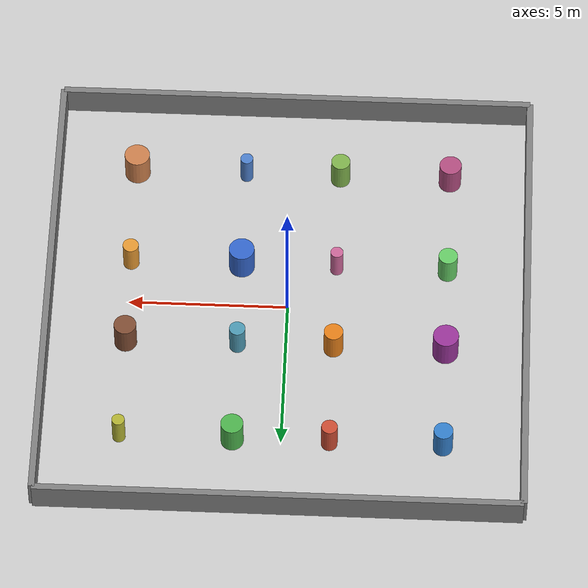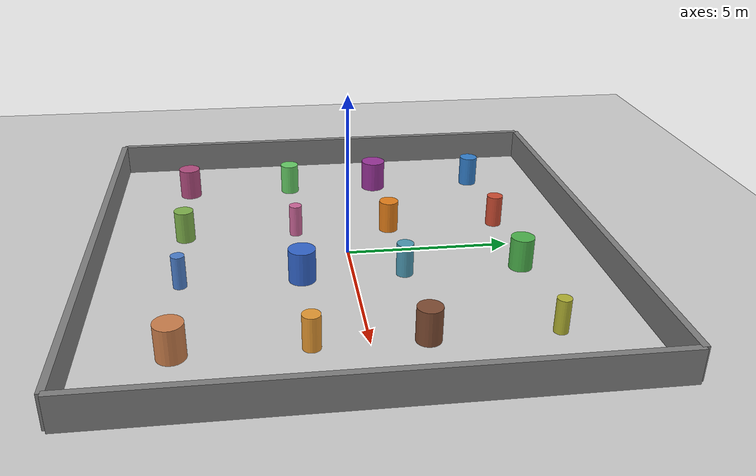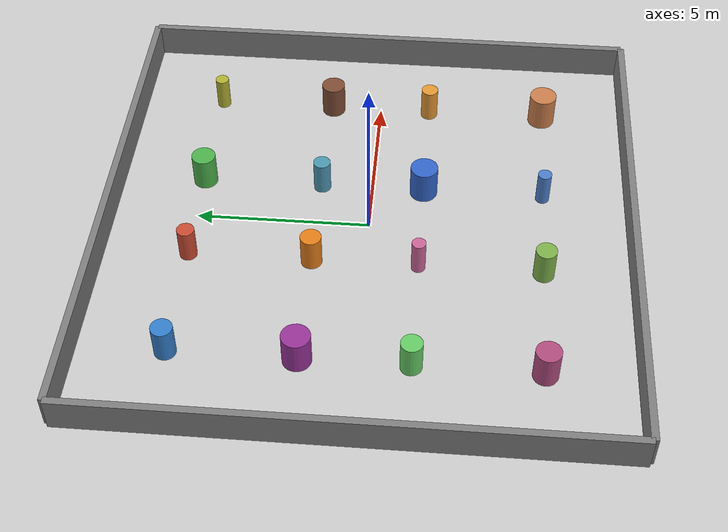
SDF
<sdf version="1.6">
 <world name="cylinder_world">
  <gravity>0 0 -9.8</gravity>
  <physics default="0" name="default_physics" type="ode">
   <max_step_size>0.001</max_step_size>
   <real_time_factor>1</real_time_factor>
   <real_time_update_rate>1000</real_time_update_rate>
  </physics>
  <scene>
   <ambient>0.4 0.4 0.4 1</ambient>
   <background>0.7 0.7 0.7 1</background>
   <shadows>1</shadows>
   <grid>true</grid>
  </scene>
  <light name="sun" type="directional">
   <pose>0 0 10 0 0 0</pose>
   <diffuse>0.8 0.8 0.8 1</diffuse>
   <specular>0.2 0.2 0.2 1</specular>
   <attenuation>
    <range>1000</range>
    <constant>0.9</constant>
    <linear>0.01</linear>
    <quadratic>0.001</quadratic>
   </attenuation>
   <direction>-0.5 0.1 -0.9</direction>
  </light>
  <model name="ground_plane">
   <static>true</static>
   <link name="link">
    <collision name="collision">
     <geometry><plane><normal>0 0 1</normal><size>15 15</size></plane></geometry>
     <surface><friction><ode><mu>100</mu><mu2>50</mu2></ode></friction></surface>
    </collision>
    <visual name="visual">
     <geometry><plane><normal>0 0 1</normal><size>15 15</size></plane></geometry>
     <material><ambient>0.8 0.8 0.8 1</ambient><diffuse>0.8 0.8 0.8 1</diffuse></material>
    </visual>
   </link>
  </model>
  <model name="cylinder_1">
   <static>true</static>
   <pose>-5 5 0.5 0 0 0</pose>
   <link name="link">
    <collision name="collision">
     <geometry><cylinder><radius>0.3</radius><length>1.0</length></cylinder></geometry>
    </collision>
    <visual name="visual">
     <geometry><cylinder><radius>0.3</radius><length>1.0</length></cylinder></geometry>
     <material><ambient>0.2 0.5 0.8 1</ambient><diffuse>0.2 0.5 0.8 1</diffuse></material>
    </visual>
   </link>
  </model>
  <model name="cylinder_2">
   <static>true</static>
   <pose>-1.5 5 0.5 0 0 0</pose>
   <link name="link">
    <collision name="collision">
     <geometry><cylinder><radius>0.25</radius><length>1.0</length></cylinder></geometry>
    </collision>
    <visual name="visual">
     <geometry><cylinder><radius>0.25</radius><length>1.0</length></cylinder></geometry>
     <material><ambient>0.8 0.3 0.2 1</ambient><diffuse>0.8 0.3 0.2 1</diffuse></material>
    </visual>
   </link>
  </model>
  <model name="cylinder_3">
   <static>true</static>
   <pose>1.5 5 0.5 0 0 0</pose>
   <link name="link">
    <collision name="collision">
     <geometry><cylinder><radius>0.35</radius><length>1.0</length></cylinder></geometry>
    </collision>
    <visual name="visual">
     <geometry><cylinder><radius>0.35</radius><length>1.0</length></cylinder></geometry>
     <material><ambient>0.3 0.7 0.3 1</ambient><diffuse>0.3 0.7 0.3 1</diffuse></material>
    </visual>
   </link>
  </model>
  <model name="cylinder_4">
   <static>true</static>
   <pose>5 5 0.5 0 0 0</pose>
   <link name="link">
    <collision name="collision">
     <geometry><cylinder><radius>0.2</radius><length>1.0</length></cylinder></geometry>
    </collision>
    <visual name="visual">
     <geometry><cylinder><radius>0.2</radius><length>1.0</length></cylinder></geometry>
     <material><ambient>0.7 0.7 0.2 1</ambient><diffuse>0.7 0.7 0.2 1</diffuse></material>
    </visual>
   </link>
  </model>
  <model name="cylinder_5">
   <static>true</static>
   <pose>-5 1.5 0.5 0 0 0</pose>
   <link name="link">
    <collision name="collision">
     <geometry><cylinder><radius>0.4</radius><length>1.0</length></cylinder></geometry>
    </collision>
    <visual name="visual">
     <geometry><cylinder><radius>0.4</radius><length>1.0</length></cylinder></geometry>
     <material><ambient>0.6 0.2 0.6 1</ambient><diffuse>0.6 0.2 0.6 1</diffuse></material>
    </visual>
   </link>
  </model>
  <model name="cylinder_6">
   <static>true</static>
   <pose>-1.5 1.5 0.5 0 0 0</pose>
   <link name="link">
    <collision name="collision">
     <geometry><cylinder><radius>0.3</radius><length>1.0</length></cylinder></geometry>
    </collision>
    <visual name="visual">
     <geometry><cylinder><radius>0.3</radius><length>1.0</length></cylinder></geometry>
     <material><ambient>0.9 0.5 0.1 1</ambient><diffuse>0.9 0.5 0.1 1</diffuse></material>
    </visual>
   </link>
  </model>
  <model name="cylinder_7">
   <static>true</static>
   <pose>1.5 1.5 0.5 0 0 0</pose>
   <link name="link">
    <collision name="collision">
     <geometry><cylinder><radius>0.25</radius><length>1.0</length></cylinder></geometry>
    </collision>
    <visual name="visual">
     <geometry><cylinder><radius>0.25</radius><length>1.0</length></cylinder></geometry>
     <material><ambient>0.3 0.6 0.7 1</ambient><diffuse>0.3 0.6 0.7 1</diffuse></material>
    </visual>
   </link>
  </model>
  <model name="cylinder_8">
   <static>true</static>
   <pose>5 1.5 0.5 0 0 0</pose>
   <link name="link">
    <collision name="collision">
     <geometry><cylinder><radius>0.35</radius><length>1.0</length></cylinder></geometry>
    </collision>
    <visual name="visual">
     <geometry><cylinder><radius>0.35</radius><length>1.0</length></cylinder></geometry>
     <material><ambient>0.5 0.3 0.2 1</ambient><diffuse>0.5 0.3 0.2 1</diffuse></material>
    </visual>
   </link>
  </model>
  <model name="cylinder_9">
   <static>true</static>
   <pose>-5 -1.5 0.5 0 0 0</pose>
   <link name="link">
    <collision name="collision">
     <geometry><cylinder><radius>0.3</radius><length>1.0</length></cylinder></geometry>
    </collision>
    <visual name="visual">
     <geometry><cylinder><radius>0.3</radius><length>1.0</length></cylinder></geometry>
     <material><ambient>0.4 0.8 0.4 1</ambient><diffuse>0.4 0.8 0.4 1</diffuse></material>
    </visual>
   </link>
  </model>
  <model name="cylinder_10">
   <static>true</static>
   <pose>-1.5 -1.5 0.5 0 0 0</pose>
   <link name="link">
    <collision name="collision">
     <geometry><cylinder><radius>0.2</radius><length>1.0</length></cylinder></geometry>
    </collision>
    <visual name="visual">
     <geometry><cylinder><radius>0.2</radius><length>1.0</length></cylinder></geometry>
     <material><ambient>0.8 0.4 0.6 1</ambient><diffuse>0.8 0.4 0.6 1</diffuse></material>
    </visual>
   </link>
  </model>
  <model name="cylinder_11">
   <static>true</static>
   <pose>1.5 -1.5 0.5 0 0 0</pose>
   <link name="link">
    <collision name="collision">
     <geometry><cylinder><radius>0.4</radius><length>1.0</length></cylinder></geometry>
    </collision>
    <visual name="visual">
     <geometry><cylinder><radius>0.4</radius><length>1.0</length></cylinder></geometry>
     <material><ambient>0.2 0.4 0.8 1</ambient><diffuse>0.2 0.4 0.8 1</diffuse></material>
    </visual>
   </link>
  </model>
  <model name="cylinder_12">
   <static>true</static>
   <pose>5 -1.5 0.5 0 0 0</pose>
   <link name="link">
    <collision name="collision">
     <geometry><cylinder><radius>0.25</radius><length>1.0</length></cylinder></geometry>
    </collision>
    <visual name="visual">
     <geometry><cylinder><radius>0.25</radius><length>1.0</length></cylinder></geometry>
     <material><ambient>0.9 0.6 0.2 1</ambient><diffuse>0.9 0.6 0.2 1</diffuse></material>
    </visual>
   </link>
  </model>
  <model name="cylinder_13">
   <static>true</static>
   <pose>-5 -5 0.5 0 0 0</pose>
   <link name="link">
    <collision name="collision">
     <geometry><cylinder><radius>0.35</radius><length>1.0</length></cylinder></geometry>
    </collision>
    <visual name="visual">
     <geometry><cylinder><radius>0.35</radius><length>1.0</length></cylinder></geometry>
     <material><ambient>0.7 0.3 0.5 1</ambient><diffuse>0.7 0.3 0.5 1</diffuse></material>
    </visual>
   </link>
  </model>
  <model name="cylinder_14">
   <static>true</static>
   <pose>-1.5 -5 0.5 0 0 0</pose>
   <link name="link">
    <collision name="collision">
     <geometry><cylinder><radius>0.3</radius><length>1.0</length></cylinder></geometry>
    </collision>
    <visual name="visual">
     <geometry><cylinder><radius>0.3</radius><length>1.0</length></cylinder></geometry>
     <material><ambient>0.5 0.7 0.3 1</ambient><diffuse>0.5 0.7 0.3 1</diffuse></material>
    </visual>
   </link>
  </model>
  <model name="cylinder_15">
   <static>true</static>
   <pose>1.5 -5 0.5 0 0 0</pose>
   <link name="link">
    <collision name="collision">
     <geometry><cylinder><radius>0.2</radius><length>1.0</length></cylinder></geometry>
    </collision>
    <visual name="visual">
     <geometry><cylinder><radius>0.2</radius><length>1.0</length></cylinder></geometry>
     <material><ambient>0.3 0.5 0.8 1</ambient><diffuse>0.3 0.5 0.8 1</diffuse></material>
    </visual>
   </link>
  </model>
  <model name="cylinder_16">
   <static>true</static>
   <pose>5 -5 0.5 0 0 0</pose>
   <link name="link">
    <collision name="collision">
     <geometry><cylinder><radius>0.4</radius><length>1.0</length></cylinder></geometry>
    </collision>
    <visual name="visual">
     <geometry><cylinder><radius>0.4</radius><length>1.0</length></cylinder></geometry>
     <material><ambient>0.8 0.5 0.3 1</ambient><diffuse>0.8 0.5 0.3 1</diffuse></material>
    </visual>
   </link>
  </model>
  <model name="wall_north">
   <static>true</static>
   <pose>0 7.5 0.5 0 0 0</pose>
   <link name="link">
    <collision name="collision"><geometry><box><size>15 0.2 1.0</size></box></geometry></collision>
    <visual name="visual">
     <geometry><box><size>15 0.2 1.0</size></box></geometry>
     <material><ambient>0.5 0.5 0.5 1</ambient><diffuse>0.5 0.5 0.5 1</diffuse></material>
    </visual>
   </link>
  </model>
  <model name="wall_south">
   <static>true</static>
   <pose>0 -7.5 0.5 0 0 0</pose>
   <link name="link">
    <collision name="collision"><geometry><box><size>15 0.2 1.0</size></box></geometry></collision>
    <visual name="visual">
     <geometry><box><size>15 0.2 1.0</size></box></geometry>
     <material><ambient>0.5 0.5 0.5 1</ambient><diffuse>0.5 0.5 0.5 1</diffuse></material>
    </visual>
   </link>
  </model>
  <model name="wall_east">
   <static>true</static>
   <pose>7.5 0 0.5 0 0 0</pose>
   <link name="link">
    <collision name="collision"><geometry><box><size>0.2 15 1.0</size></box></geometry></collision>
    <visual name="visual">
     <geometry><box><size>0.2 15 1.0</size></box></geometry>
     <material><ambient>0.5 0.5 0.5 1</ambient><diffuse>0.5 0.5 0.5 1</diffuse></material>
    </visual>
   </link>
  </model>
  <model name="wall_west">
   <static>true</static>
   <pose>-7.5 0 0.5 0 0 0</pose>
   <link name="link">
    <collision name="collision"><geometry><box><size>0.2 15 1.0</size></box></geometry></collision>
    <visual name="visual">
     <geometry><box><size>0.2 15 1.0</size></box></geometry>
     <material><ambient>0.5 0.5 0.5 1</ambient><diffuse>0.5 0.5 0.5 1</diffuse></material>
    </visual>
   </link>
  </model>
 </world>
</sdf>
